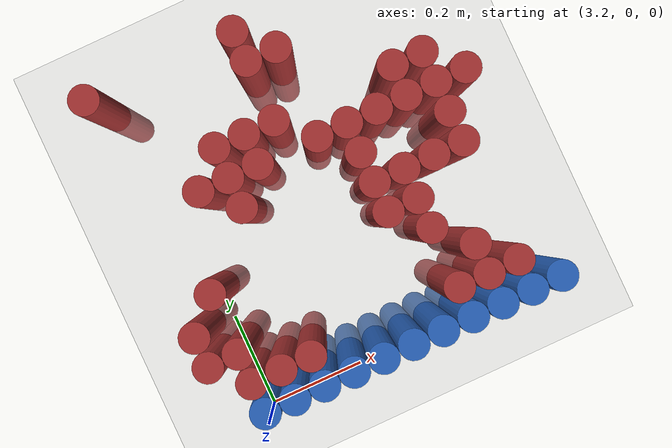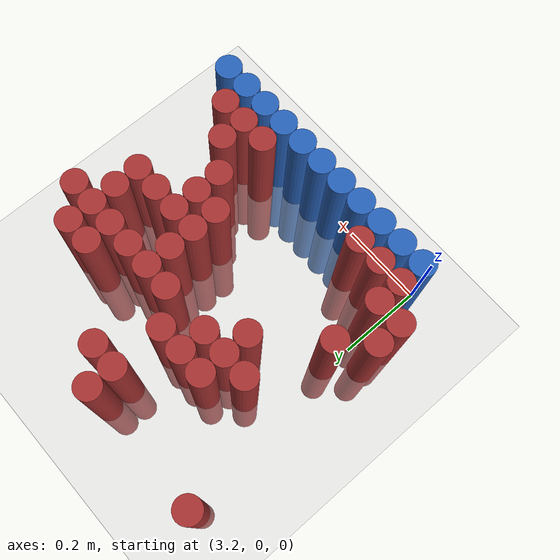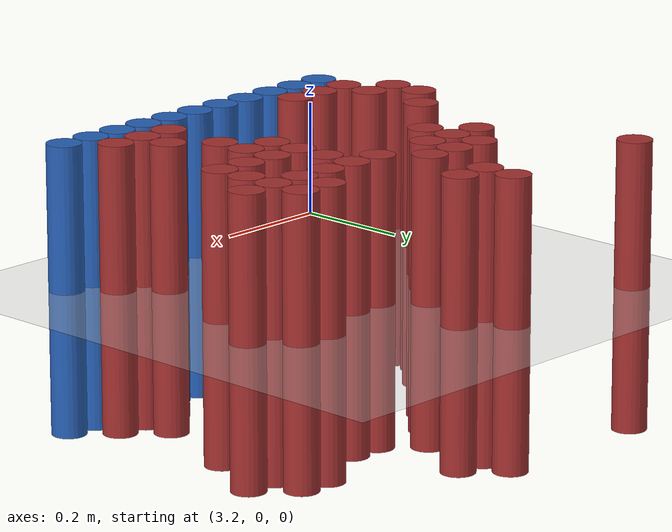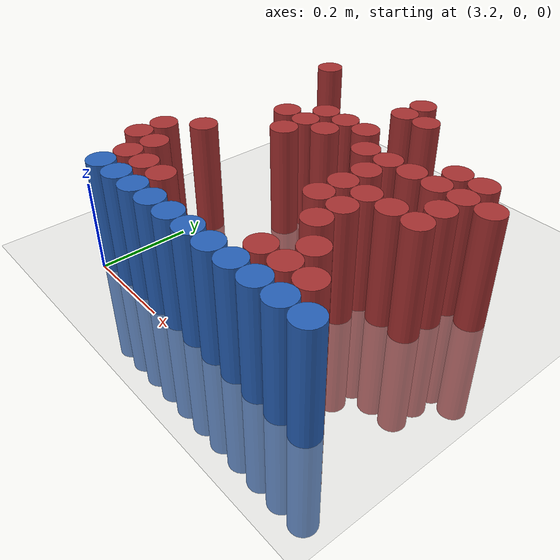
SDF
<sdf version="1.6">
 <world name="default">
  <model name="ground_plane">
   <static>1</static>
   <link name="link">
    <collision name="collision">
     <geometry><plane><normal>0 0 1</normal><size>100 100</size></plane></geometry>
     <surface><friction><ode><mu>100</mu><mu2>50</mu2></ode></friction></surface>
    </collision>
    <visual name="visual">
     <cast_shadows>0</cast_shadows>
     <geometry><plane><normal>0 0 1</normal><size>100 100</size></plane></geometry>
     <material>
      <script><uri>file://media/materials/scripts/gazebo.material</uri><name>Gazebo/Grey</name></script>
     </material>
    </visual>
   </link>
  </model>
  <model name="unit_cylinder_229">
   <static>1</static>
   <pose>3.150000 0.690000 0.000000 0.000000 0.000000 0.000000</pose>
   <link name="link">
    <inertial>
     <mass>1</mass>
     <inertia><ixx>0.145833</ixx><ixy>0</ixy><ixz>0</ixz><iyy>0.145833</iyy><iyz>0</iyz><izz>0.125</izz></inertia>
    </inertial>
    <collision name="collision">
     <geometry><cylinder><radius>0.030000</radius><length>0.5</length></cylinder></geometry>
    </collision>
    <visual name="visual">
     <geometry><cylinder><radius>0.030000</radius><length>0.5</length></cylinder></geometry>
     <material>
      <ambient>0.648000 0.192000 0.192000 1</ambient>
      <diffuse>0.648000 0.192000 0.192000 1</diffuse>
     </material>
     <material>
      <script><name>Gazebo/Grey</name><uri>file://media/materials/scripts/gazebo.material</uri></script>
     </material>
    </visual>
   </link>
  </model>
  <model name="unit_cylinder_230">
   <static>1</static>
   <pose>3.450000 0.690000 0.000000 0.000000 0.000000 0.000000</pose>
   <link name="link">
    <inertial>
     <mass>1</mass>
     <inertia><ixx>0.145833</ixx><ixy>0</ixy><ixz>0</ixz><iyy>0.145833</iyy><iyz>0</iyz><izz>0.125</izz></inertia>
    </inertial>
    <collision name="collision">
     <geometry><cylinder><radius>0.030000</radius><length>0.5</length></cylinder></geometry>
    </collision>
    <visual name="visual">
     <geometry><cylinder><radius>0.030000</radius><length>0.5</length></cylinder></geometry>
     <material>
      <ambient>0.648000 0.192000 0.192000 1</ambient>
      <diffuse>0.648000 0.192000 0.192000 1</diffuse>
     </material>
     <material>
      <script><name>Gazebo/Grey</name><uri>file://media/materials/scripts/gazebo.material</uri></script>
     </material>
    </visual>
   </link>
  </model>
  <model name="unit_cylinder_235">
   <static>1</static>
   <pose>3.450000 0.630000 0.000000 0.000000 0.000000 0.000000</pose>
   <link name="link">
    <inertial>
     <mass>1</mass>
     <inertia><ixx>0.145833</ixx><ixy>0</ixy><ixz>0</ixz><iyy>0.145833</iyy><iyz>0</iyz><izz>0.125</izz></inertia>
    </inertial>
    <collision name="collision">
     <geometry><cylinder><radius>0.030000</radius><length>0.5</length></cylinder></geometry>
    </collision>
    <visual name="visual">
     <geometry><cylinder><radius>0.030000</radius><length>0.5</length></cylinder></geometry>
     <material>
      <ambient>0.648000 0.192000 0.192000 1</ambient>
      <diffuse>0.648000 0.192000 0.192000 1</diffuse>
     </material>
     <material>
      <script><name>Gazebo/Grey</name><uri>file://media/materials/scripts/gazebo.material</uri></script>
     </material>
    </visual>
   </link>
  </model>
  <model name="unit_cylinder_236">
   <static>1</static>
   <pose>3.510000 0.630000 0.000000 0.000000 0.000000 0.000000</pose>
   <link name="link">
    <inertial>
     <mass>1</mass>
     <inertia><ixx>0.145833</ixx><ixy>0</ixy><ixz>0</ixz><iyy>0.145833</iyy><iyz>0</iyz><izz>0.125</izz></inertia>
    </inertial>
    <collision name="collision">
     <geometry><cylinder><radius>0.030000</radius><length>0.5</length></cylinder></geometry>
    </collision>
    <visual name="visual">
     <geometry><cylinder><radius>0.030000</radius><length>0.5</length></cylinder></geometry>
     <material>
      <ambient>0.648000 0.192000 0.192000 1</ambient>
      <diffuse>0.648000 0.192000 0.192000 1</diffuse>
     </material>
     <material>
      <script><name>Gazebo/Grey</name><uri>file://media/materials/scripts/gazebo.material</uri></script>
     </material>
    </visual>
   </link>
  </model>
  <model name="unit_cylinder_244">
   <static>1</static>
   <pose>3.330000 0.510000 0.000000 0.000000 0.000000 0.000000</pose>
   <link name="link">
    <inertial>
     <mass>1</mass>
     <inertia><ixx>0.145833</ixx><ixy>0</ixy><ixz>0</ixz><iyy>0.145833</iyy><iyz>0</iyz><izz>0.125</izz></inertia>
    </inertial>
    <collision name="collision">
     <geometry><cylinder><radius>0.030000</radius><length>0.5</length></cylinder></geometry>
    </collision>
    <visual name="visual">
     <geometry><cylinder><radius>0.030000</radius><length>0.5</length></cylinder></geometry>
     <material>
      <ambient>0.648000 0.192000 0.192000 1</ambient>
      <diffuse>0.648000 0.192000 0.192000 1</diffuse>
     </material>
     <material>
      <script><name>Gazebo/Grey</name><uri>file://media/materials/scripts/gazebo.material</uri></script>
     </material>
    </visual>
   </link>
  </model>
  <model name="unit_cylinder_245">
   <static>1</static>
   <pose>3.390000 0.510000 0.000000 0.000000 0.000000 0.000000</pose>
   <link name="link">
    <inertial>
     <mass>1</mass>
     <inertia><ixx>0.145833</ixx><ixy>0</ixy><ixz>0</ixz><iyy>0.145833</iyy><iyz>0</iyz><izz>0.125</izz></inertia>
    </inertial>
    <collision name="collision">
     <geometry><cylinder><radius>0.030000</radius><length>0.5</length></cylinder></geometry>
    </collision>
    <visual name="visual">
     <geometry><cylinder><radius>0.030000</radius><length>0.5</length></cylinder></geometry>
     <material>
      <ambient>0.648000 0.192000 0.192000 1</ambient>
      <diffuse>0.648000 0.192000 0.192000 1</diffuse>
     </material>
     <material>
      <script><name>Gazebo/Grey</name><uri>file://media/materials/scripts/gazebo.material</uri></script>
     </material>
    </visual>
   </link>
  </model>
  <model name="unit_cylinder_246">
   <static>1</static>
   <pose>3.450000 0.510000 0.000000 0.000000 0.000000 0.000000</pose>
   <link name="link">
    <inertial>
     <mass>1</mass>
     <inertia><ixx>0.145833</ixx><ixy>0</ixy><ixz>0</ixz><iyy>0.145833</iyy><iyz>0</iyz><izz>0.125</izz></inertia>
    </inertial>
    <collision name="collision">
     <geometry><cylinder><radius>0.030000</radius><length>0.5</length></cylinder></geometry>
    </collision>
    <visual name="visual">
     <geometry><cylinder><radius>0.030000</radius><length>0.5</length></cylinder></geometry>
     <material>
      <ambient>0.648000 0.192000 0.192000 1</ambient>
      <diffuse>0.648000 0.192000 0.192000 1</diffuse>
     </material>
     <material>
      <script><name>Gazebo/Grey</name><uri>file://media/materials/scripts/gazebo.material</uri></script>
     </material>
    </visual>
   </link>
  </model>
  <model name="unit_cylinder_247">
   <static>1</static>
   <pose>3.690000 0.510000 0.000000 0.000000 0.000000 0.000000</pose>
   <link name="link">
    <inertial>
     <mass>1</mass>
     <inertia><ixx>0.145833</ixx><ixy>0</ixy><ixz>0</ixz><iyy>0.145833</iyy><iyz>0</iyz><izz>0.125</izz></inertia>
    </inertial>
    <collision name="collision">
     <geometry><cylinder><radius>0.030000</radius><length>0.5</length></cylinder></geometry>
    </collision>
    <visual name="visual">
     <geometry><cylinder><radius>0.030000</radius><length>0.5</length></cylinder></geometry>
     <material>
      <ambient>0.648000 0.192000 0.192000 1</ambient>
      <diffuse>0.648000 0.192000 0.192000 1</diffuse>
     </material>
     <material>
      <script><name>Gazebo/Grey</name><uri>file://media/materials/scripts/gazebo.material</uri></script>
     </material>
    </visual>
   </link>
  </model>
  <model name="unit_cylinder_248">
   <static>1</static>
   <pose>3.750000 0.510000 0.000000 0.000000 0.000000 0.000000</pose>
   <link name="link">
    <inertial>
     <mass>1</mass>
     <inertia><ixx>0.145833</ixx><ixy>0</ixy><ixz>0</ixz><iyy>0.145833</iyy><iyz>0</iyz><izz>0.125</izz></inertia>
    </inertial>
    <collision name="collision">
     <geometry><cylinder><radius>0.030000</radius><length>0.5</length></cylinder></geometry>
    </collision>
    <visual name="visual">
     <geometry><cylinder><radius>0.030000</radius><length>0.5</length></cylinder></geometry>
     <material>
      <ambient>0.648000 0.192000 0.192000 1</ambient>
      <diffuse>0.648000 0.192000 0.192000 1</diffuse>
     </material>
     <material>
      <script><name>Gazebo/Grey</name><uri>file://media/materials/scripts/gazebo.material</uri></script>
     </material>
    </visual>
   </link>
  </model>
  <model name="unit_cylinder_250">
   <static>1</static>
   <pose>3.270000 0.450000 0.000000 0.000000 0.000000 0.000000</pose>
   <link name="link">
    <inertial>
     <mass>1</mass>
     <inertia><ixx>0.145833</ixx><ixy>0</ixy><ixz>0</ixz><iyy>0.145833</iyy><iyz>0</iyz><izz>0.125</izz></inertia>
    </inertial>
    <collision name="collision">
     <geometry><cylinder><radius>0.030000</radius><length>0.5</length></cylinder></geometry>
    </collision>
    <visual name="visual">
     <geometry><cylinder><radius>0.030000</radius><length>0.5</length></cylinder></geometry>
     <material>
      <ambient>0.648000 0.192000 0.192000 1</ambient>
      <diffuse>0.648000 0.192000 0.192000 1</diffuse>
     </material>
     <material>
      <script><name>Gazebo/Grey</name><uri>file://media/materials/scripts/gazebo.material</uri></script>
     </material>
    </visual>
   </link>
  </model>
  <model name="unit_cylinder_251">
   <static>1</static>
   <pose>3.330000 0.450000 0.000000 0.000000 0.000000 0.000000</pose>
   <link name="link">
    <inertial>
     <mass>1</mass>
     <inertia><ixx>0.145833</ixx><ixy>0</ixy><ixz>0</ixz><iyy>0.145833</iyy><iyz>0</iyz><izz>0.125</izz></inertia>
    </inertial>
    <collision name="collision">
     <geometry><cylinder><radius>0.030000</radius><length>0.5</length></cylinder></geometry>
    </collision>
    <visual name="visual">
     <geometry><cylinder><radius>0.030000</radius><length>0.5</length></cylinder></geometry>
     <material>
      <ambient>0.648000 0.192000 0.192000 1</ambient>
      <diffuse>0.648000 0.192000 0.192000 1</diffuse>
     </material>
     <material>
      <script><name>Gazebo/Grey</name><uri>file://media/materials/scripts/gazebo.material</uri></script>
     </material>
    </visual>
   </link>
  </model>
  <model name="unit_cylinder_252">
   <static>1</static>
   <pose>3.390000 0.450000 0.000000 0.000000 0.000000 0.000000</pose>
   <link name="link">
    <inertial>
     <mass>1</mass>
     <inertia><ixx>0.145833</ixx><ixy>0</ixy><ixz>0</ixz><iyy>0.145833</iyy><iyz>0</iyz><izz>0.125</izz></inertia>
    </inertial>
    <collision name="collision">
     <geometry><cylinder><radius>0.030000</radius><length>0.5</length></cylinder></geometry>
    </collision>
    <visual name="visual">
     <geometry><cylinder><radius>0.030000</radius><length>0.5</length></cylinder></geometry>
     <material>
      <ambient>0.648000 0.192000 0.192000 1</ambient>
      <diffuse>0.648000 0.192000 0.192000 1</diffuse>
     </material>
     <material>
      <script><name>Gazebo/Grey</name><uri>file://media/materials/scripts/gazebo.material</uri></script>
     </material>
    </visual>
   </link>
  </model>
  <model name="unit_cylinder_253">
   <static>1</static>
   <pose>3.510000 0.450000 0.000000 0.000000 0.000000 0.000000</pose>
   <link name="link">
    <inertial>
     <mass>1</mass>
     <inertia><ixx>0.145833</ixx><ixy>0</ixy><ixz>0</ixz><iyy>0.145833</iyy><iyz>0</iyz><izz>0.125</izz></inertia>
    </inertial>
    <collision name="collision">
     <geometry><cylinder><radius>0.030000</radius><length>0.5</length></cylinder></geometry>
    </collision>
    <visual name="visual">
     <geometry><cylinder><radius>0.030000</radius><length>0.5</length></cylinder></geometry>
     <material>
      <ambient>0.648000 0.192000 0.192000 1</ambient>
      <diffuse>0.648000 0.192000 0.192000 1</diffuse>
     </material>
     <material>
      <script><name>Gazebo/Grey</name><uri>file://media/materials/scripts/gazebo.material</uri></script>
     </material>
    </visual>
   </link>
  </model>
  <model name="unit_cylinder_254">
   <static>1</static>
   <pose>3.570000 0.450000 0.000000 0.000000 0.000000 0.000000</pose>
   <link name="link">
    <inertial>
     <mass>1</mass>
     <inertia><ixx>0.145833</ixx><ixy>0</ixy><ixz>0</ixz><iyy>0.145833</iyy><iyz>0</iyz><izz>0.125</izz></inertia>
    </inertial>
    <collision name="collision">
     <geometry><cylinder><radius>0.030000</radius><length>0.5</length></cylinder></geometry>
    </collision>
    <visual name="visual">
     <geometry><cylinder><radius>0.030000</radius><length>0.5</length></cylinder></geometry>
     <material>
      <ambient>0.648000 0.192000 0.192000 1</ambient>
      <diffuse>0.648000 0.192000 0.192000 1</diffuse>
     </material>
     <material>
      <script><name>Gazebo/Grey</name><uri>file://media/materials/scripts/gazebo.material</uri></script>
     </material>
    </visual>
   </link>
  </model>
  <model name="unit_cylinder_255">
   <static>1</static>
   <pose>3.630000 0.450000 0.000000 0.000000 0.000000 0.000000</pose>
   <link name="link">
    <inertial>
     <mass>1</mass>
     <inertia><ixx>0.145833</ixx><ixy>0</ixy><ixz>0</ixz><iyy>0.145833</iyy><iyz>0</iyz><izz>0.125</izz></inertia>
    </inertial>
    <collision name="collision">
     <geometry><cylinder><radius>0.030000</radius><length>0.5</length></cylinder></geometry>
    </collision>
    <visual name="visual">
     <geometry><cylinder><radius>0.030000</radius><length>0.5</length></cylinder></geometry>
     <material>
      <ambient>0.648000 0.192000 0.192000 1</ambient>
      <diffuse>0.648000 0.192000 0.192000 1</diffuse>
     </material>
     <material>
      <script><name>Gazebo/Grey</name><uri>file://media/materials/scripts/gazebo.material</uri></script>
     </material>
    </visual>
   </link>
  </model>
  <model name="unit_cylinder_256">
   <static>1</static>
   <pose>3.690000 0.450000 0.000000 0.000000 0.000000 0.000000</pose>
   <link name="link">
    <inertial>
     <mass>1</mass>
     <inertia><ixx>0.145833</ixx><ixy>0</ixy><ixz>0</ixz><iyy>0.145833</iyy><iyz>0</iyz><izz>0.125</izz></inertia>
    </inertial>
    <collision name="collision">
     <geometry><cylinder><radius>0.030000</radius><length>0.5</length></cylinder></geometry>
    </collision>
    <visual name="visual">
     <geometry><cylinder><radius>0.030000</radius><length>0.5</length></cylinder></geometry>
     <material>
      <ambient>0.648000 0.192000 0.192000 1</ambient>
      <diffuse>0.648000 0.192000 0.192000 1</diffuse>
     </material>
     <material>
      <script><name>Gazebo/Grey</name><uri>file://media/materials/scripts/gazebo.material</uri></script>
     </material>
    </visual>
   </link>
  </model>
  <model name="unit_cylinder_257">
   <static>1</static>
   <pose>3.750000 0.450000 0.000000 0.000000 0.000000 0.000000</pose>
   <link name="link">
    <inertial>
     <mass>1</mass>
     <inertia><ixx>0.145833</ixx><ixy>0</ixy><ixz>0</ixz><iyy>0.145833</iyy><iyz>0</iyz><izz>0.125</izz></inertia>
    </inertial>
    <collision name="collision">
     <geometry><cylinder><radius>0.030000</radius><length>0.5</length></cylinder></geometry>
    </collision>
    <visual name="visual">
     <geometry><cylinder><radius>0.030000</radius><length>0.5</length></cylinder></geometry>
     <material>
      <ambient>0.648000 0.192000 0.192000 1</ambient>
      <diffuse>0.648000 0.192000 0.192000 1</diffuse>
     </material>
     <material>
      <script><name>Gazebo/Grey</name><uri>file://media/materials/scripts/gazebo.material</uri></script>
     </material>
    </visual>
   </link>
  </model>
  <model name="unit_cylinder_258">
   <static>1</static>
   <pose>3.810000 0.450000 0.000000 0.000000 0.000000 0.000000</pose>
   <link name="link">
    <inertial>
     <mass>1</mass>
     <inertia><ixx>0.145833</ixx><ixy>0</ixy><ixz>0</ixz><iyy>0.145833</iyy><iyz>0</iyz><izz>0.125</izz></inertia>
    </inertial>
    <collision name="collision">
     <geometry><cylinder><radius>0.030000</radius><length>0.5</length></cylinder></geometry>
    </collision>
    <visual name="visual">
     <geometry><cylinder><radius>0.030000</radius><length>0.5</length></cylinder></geometry>
     <material>
      <ambient>0.648000 0.192000 0.192000 1</ambient>
      <diffuse>0.648000 0.192000 0.192000 1</diffuse>
     </material>
     <material>
      <script><name>Gazebo/Grey</name><uri>file://media/materials/scripts/gazebo.material</uri></script>
     </material>
    </visual>
   </link>
  </model>
  <model name="unit_cylinder_261">
   <static>1</static>
   <pose>3.330000 0.390000 0.000000 0.000000 0.000000 0.000000</pose>
   <link name="link">
    <inertial>
     <mass>1</mass>
     <inertia><ixx>0.145833</ixx><ixy>0</ixy><ixz>0</ixz><iyy>0.145833</iyy><iyz>0</iyz><izz>0.125</izz></inertia>
    </inertial>
    <collision name="collision">
     <geometry><cylinder><radius>0.030000</radius><length>0.5</length></cylinder></geometry>
    </collision>
    <visual name="visual">
     <geometry><cylinder><radius>0.030000</radius><length>0.5</length></cylinder></geometry>
     <material>
      <ambient>0.648000 0.192000 0.192000 1</ambient>
      <diffuse>0.648000 0.192000 0.192000 1</diffuse>
     </material>
     <material>
      <script><name>Gazebo/Grey</name><uri>file://media/materials/scripts/gazebo.material</uri></script>
     </material>
    </visual>
   </link>
  </model>
  <model name="unit_cylinder_262">
   <static>1</static>
   <pose>3.570000 0.390000 0.000000 0.000000 0.000000 0.000000</pose>
   <link name="link">
    <inertial>
     <mass>1</mass>
     <inertia><ixx>0.145833</ixx><ixy>0</ixy><ixz>0</ixz><iyy>0.145833</iyy><iyz>0</iyz><izz>0.125</izz></inertia>
    </inertial>
    <collision name="collision">
     <geometry><cylinder><radius>0.030000</radius><length>0.5</length></cylinder></geometry>
    </collision>
    <visual name="visual">
     <geometry><cylinder><radius>0.030000</radius><length>0.5</length></cylinder></geometry>
     <material>
      <ambient>0.648000 0.192000 0.192000 1</ambient>
      <diffuse>0.648000 0.192000 0.192000 1</diffuse>
     </material>
     <material>
      <script><name>Gazebo/Grey</name><uri>file://media/materials/scripts/gazebo.material</uri></script>
     </material>
    </visual>
   </link>
  </model>
  <model name="unit_cylinder_263">
   <static>1</static>
   <pose>3.750000 0.390000 0.000000 0.000000 0.000000 0.000000</pose>
   <link name="link">
    <inertial>
     <mass>1</mass>
     <inertia><ixx>0.145833</ixx><ixy>0</ixy><ixz>0</ixz><iyy>0.145833</iyy><iyz>0</iyz><izz>0.125</izz></inertia>
    </inertial>
    <collision name="collision">
     <geometry><cylinder><radius>0.030000</radius><length>0.5</length></cylinder></geometry>
    </collision>
    <visual name="visual">
     <geometry><cylinder><radius>0.030000</radius><length>0.5</length></cylinder></geometry>
     <material>
      <ambient>0.648000 0.192000 0.192000 1</ambient>
      <diffuse>0.648000 0.192000 0.192000 1</diffuse>
     </material>
     <material>
      <script><name>Gazebo/Grey</name><uri>file://media/materials/scripts/gazebo.material</uri></script>
     </material>
    </visual>
   </link>
  </model>
  <model name="unit_cylinder_268">
   <static>1</static>
   <pose>3.570000 0.330000 0.000000 0.000000 0.000000 0.000000</pose>
   <link name="link">
    <inertial>
     <mass>1</mass>
     <inertia><ixx>0.145833</ixx><ixy>0</ixy><ixz>0</ixz><iyy>0.145833</iyy><iyz>0</iyz><izz>0.125</izz></inertia>
    </inertial>
    <collision name="collision">
     <geometry><cylinder><radius>0.030000</radius><length>0.5</length></cylinder></geometry>
    </collision>
    <visual name="visual">
     <geometry><cylinder><radius>0.030000</radius><length>0.5</length></cylinder></geometry>
     <material>
      <ambient>0.648000 0.192000 0.192000 1</ambient>
      <diffuse>0.648000 0.192000 0.192000 1</diffuse>
     </material>
     <material>
      <script><name>Gazebo/Grey</name><uri>file://media/materials/scripts/gazebo.material</uri></script>
     </material>
    </visual>
   </link>
  </model>
  <model name="unit_cylinder_269">
   <static>1</static>
   <pose>3.630000 0.330000 0.000000 0.000000 0.000000 0.000000</pose>
   <link name="link">
    <inertial>
     <mass>1</mass>
     <inertia><ixx>0.145833</ixx><ixy>0</ixy><ixz>0</ixz><iyy>0.145833</iyy><iyz>0</iyz><izz>0.125</izz></inertia>
    </inertial>
    <collision name="collision">
     <geometry><cylinder><radius>0.030000</radius><length>0.5</length></cylinder></geometry>
    </collision>
    <visual name="visual">
     <geometry><cylinder><radius>0.030000</radius><length>0.5</length></cylinder></geometry>
     <material>
      <ambient>0.648000 0.192000 0.192000 1</ambient>
      <diffuse>0.648000 0.192000 0.192000 1</diffuse>
     </material>
     <material>
      <script><name>Gazebo/Grey</name><uri>file://media/materials/scripts/gazebo.material</uri></script>
     </material>
    </visual>
   </link>
  </model>
  <model name="unit_cylinder_270">
   <static>1</static>
   <pose>3.690000 0.330000 0.000000 0.000000 0.000000 0.000000</pose>
   <link name="link">
    <inertial>
     <mass>1</mass>
     <inertia><ixx>0.145833</ixx><ixy>0</ixy><ixz>0</ixz><iyy>0.145833</iyy><iyz>0</iyz><izz>0.125</izz></inertia>
    </inertial>
    <collision name="collision">
     <geometry><cylinder><radius>0.030000</radius><length>0.5</length></cylinder></geometry>
    </collision>
    <visual name="visual">
     <geometry><cylinder><radius>0.030000</radius><length>0.5</length></cylinder></geometry>
     <material>
      <ambient>0.648000 0.192000 0.192000 1</ambient>
      <diffuse>0.648000 0.192000 0.192000 1</diffuse>
     </material>
     <material>
      <script><name>Gazebo/Grey</name><uri>file://media/materials/scripts/gazebo.material</uri></script>
     </material>
    </visual>
   </link>
  </model>
  <model name="unit_cylinder_271">
   <static>1</static>
   <pose>3.750000 0.330000 0.000000 0.000000 0.000000 0.000000</pose>
   <link name="link">
    <inertial>
     <mass>1</mass>
     <inertia><ixx>0.145833</ixx><ixy>0</ixy><ixz>0</ixz><iyy>0.145833</iyy><iyz>0</iyz><izz>0.125</izz></inertia>
    </inertial>
    <collision name="collision">
     <geometry><cylinder><radius>0.030000</radius><length>0.5</length></cylinder></geometry>
    </collision>
    <visual name="visual">
     <geometry><cylinder><radius>0.030000</radius><length>0.5</length></cylinder></geometry>
     <material>
      <ambient>0.648000 0.192000 0.192000 1</ambient>
      <diffuse>0.648000 0.192000 0.192000 1</diffuse>
     </material>
     <material>
      <script><name>Gazebo/Grey</name><uri>file://media/materials/scripts/gazebo.material</uri></script>
     </material>
    </visual>
   </link>
  </model>
  <model name="unit_cylinder_276">
   <static>1</static>
   <pose>3.210000 0.270000 0.000000 0.000000 0.000000 0.000000</pose>
   <link name="link">
    <inertial>
     <mass>1</mass>
     <inertia><ixx>0.145833</ixx><ixy>0</ixy><ixz>0</ixz><iyy>0.145833</iyy><iyz>0</iyz><izz>0.125</izz></inertia>
    </inertial>
    <collision name="collision">
     <geometry><cylinder><radius>0.030000</radius><length>0.5</length></cylinder></geometry>
    </collision>
    <visual name="visual">
     <geometry><cylinder><radius>0.030000</radius><length>0.5</length></cylinder></geometry>
     <material>
      <ambient>0.648000 0.192000 0.192000 1</ambient>
      <diffuse>0.648000 0.192000 0.192000 1</diffuse>
     </material>
     <material>
      <script><name>Gazebo/Grey</name><uri>file://media/materials/scripts/gazebo.material</uri></script>
     </material>
    </visual>
   </link>
  </model>
  <model name="unit_cylinder_277">
   <static>1</static>
   <pose>3.570000 0.270000 0.000000 0.000000 0.000000 0.000000</pose>
   <link name="link">
    <inertial>
     <mass>1</mass>
     <inertia><ixx>0.145833</ixx><ixy>0</ixy><ixz>0</ixz><iyy>0.145833</iyy><iyz>0</iyz><izz>0.125</izz></inertia>
    </inertial>
    <collision name="collision">
     <geometry><cylinder><radius>0.030000</radius><length>0.5</length></cylinder></geometry>
    </collision>
    <visual name="visual">
     <geometry><cylinder><radius>0.030000</radius><length>0.5</length></cylinder></geometry>
     <material>
      <ambient>0.648000 0.192000 0.192000 1</ambient>
      <diffuse>0.648000 0.192000 0.192000 1</diffuse>
     </material>
     <material>
      <script><name>Gazebo/Grey</name><uri>file://media/materials/scripts/gazebo.material</uri></script>
     </material>
    </visual>
   </link>
  </model>
  <model name="unit_cylinder_278">
   <static>1</static>
   <pose>3.630000 0.270000 0.000000 0.000000 0.000000 0.000000</pose>
   <link name="link">
    <inertial>
     <mass>1</mass>
     <inertia><ixx>0.145833</ixx><ixy>0</ixy><ixz>0</ixz><iyy>0.145833</iyy><iyz>0</iyz><izz>0.125</izz></inertia>
    </inertial>
    <collision name="collision">
     <geometry><cylinder><radius>0.030000</radius><length>0.5</length></cylinder></geometry>
    </collision>
    <visual name="visual">
     <geometry><cylinder><radius>0.030000</radius><length>0.5</length></cylinder></geometry>
     <material>
      <ambient>0.648000 0.192000 0.192000 1</ambient>
      <diffuse>0.648000 0.192000 0.192000 1</diffuse>
     </material>
     <material>
      <script><name>Gazebo/Grey</name><uri>file://media/materials/scripts/gazebo.material</uri></script>
     </material>
    </visual>
   </link>
  </model>
  <model name="unit_cylinder_288">
   <static>1</static>
   <pose>3.150000 0.210000 0.000000 0.000000 0.000000 0.000000</pose>
   <link name="link">
    <inertial>
     <mass>1</mass>
     <inertia><ixx>0.145833</ixx><ixy>0</ixy><ixz>0</ixz><iyy>0.145833</iyy><iyz>0</iyz><izz>0.125</izz></inertia>
    </inertial>
    <collision name="collision">
     <geometry><cylinder><radius>0.030000</radius><length>0.5</length></cylinder></geometry>
    </collision>
    <visual name="visual">
     <geometry><cylinder><radius>0.030000</radius><length>0.5</length></cylinder></geometry>
     <material>
      <ambient>0.648000 0.192000 0.192000 1</ambient>
      <diffuse>0.648000 0.192000 0.192000 1</diffuse>
     </material>
     <material>
      <script><name>Gazebo/Grey</name><uri>file://media/materials/scripts/gazebo.material</uri></script>
     </material>
    </visual>
   </link>
  </model>
  <model name="unit_cylinder_289">
   <static>1</static>
   <pose>3.630000 0.210000 0.000000 0.000000 0.000000 0.000000</pose>
   <link name="link">
    <inertial>
     <mass>1</mass>
     <inertia><ixx>0.145833</ixx><ixy>0</ixy><ixz>0</ixz><iyy>0.145833</iyy><iyz>0</iyz><izz>0.125</izz></inertia>
    </inertial>
    <collision name="collision">
     <geometry><cylinder><radius>0.030000</radius><length>0.5</length></cylinder></geometry>
    </collision>
    <visual name="visual">
     <geometry><cylinder><radius>0.030000</radius><length>0.5</length></cylinder></geometry>
     <material>
      <ambient>0.648000 0.192000 0.192000 1</ambient>
      <diffuse>0.648000 0.192000 0.192000 1</diffuse>
     </material>
     <material>
      <script><name>Gazebo/Grey</name><uri>file://media/materials/scripts/gazebo.material</uri></script>
     </material>
    </visual>
   </link>
  </model>
  <model name="unit_cylinder_298">
   <static>1</static>
   <pose>3.150000 0.150000 0.000000 0.000000 0.000000 0.000000</pose>
   <link name="link">
    <inertial>
     <mass>1</mass>
     <inertia><ixx>0.145833</ixx><ixy>0</ixy><ixz>0</ixz><iyy>0.145833</iyy><iyz>0</iyz><izz>0.125</izz></inertia>
    </inertial>
    <collision name="collision">
     <geometry><cylinder><radius>0.030000</radius><length>0.5</length></cylinder></geometry>
    </collision>
    <visual name="visual">
     <geometry><cylinder><radius>0.030000</radius><length>0.5</length></cylinder></geometry>
     <material>
      <ambient>0.648000 0.192000 0.192000 1</ambient>
      <diffuse>0.648000 0.192000 0.192000 1</diffuse>
     </material>
     <material>
      <script><name>Gazebo/Grey</name><uri>file://media/materials/scripts/gazebo.material</uri></script>
     </material>
    </visual>
   </link>
  </model>
  <model name="unit_cylinder_299">
   <static>1</static>
   <pose>3.210000 0.150000 0.000000 0.000000 0.000000 0.000000</pose>
   <link name="link">
    <inertial>
     <mass>1</mass>
     <inertia><ixx>0.145833</ixx><ixy>0</ixy><ixz>0</ixz><iyy>0.145833</iyy><iyz>0</iyz><izz>0.125</izz></inertia>
    </inertial>
    <collision name="collision">
     <geometry><cylinder><radius>0.030000</radius><length>0.5</length></cylinder></geometry>
    </collision>
    <visual name="visual">
     <geometry><cylinder><radius>0.030000</radius><length>0.5</length></cylinder></geometry>
     <material>
      <ambient>0.648000 0.192000 0.192000 1</ambient>
      <diffuse>0.648000 0.192000 0.192000 1</diffuse>
     </material>
     <material>
      <script><name>Gazebo/Grey</name><uri>file://media/materials/scripts/gazebo.material</uri></script>
     </material>
    </visual>
   </link>
  </model>
  <model name="unit_cylinder_300">
   <static>1</static>
   <pose>3.690000 0.150000 0.000000 0.000000 0.000000 0.000000</pose>
   <link name="link">
    <inertial>
     <mass>1</mass>
     <inertia><ixx>0.145833</ixx><ixy>0</ixy><ixz>0</ixz><iyy>0.145833</iyy><iyz>0</iyz><izz>0.125</izz></inertia>
    </inertial>
    <collision name="collision">
     <geometry><cylinder><radius>0.030000</radius><length>0.5</length></cylinder></geometry>
    </collision>
    <visual name="visual">
     <geometry><cylinder><radius>0.030000</radius><length>0.5</length></cylinder></geometry>
     <material>
      <ambient>0.648000 0.192000 0.192000 1</ambient>
      <diffuse>0.648000 0.192000 0.192000 1</diffuse>
     </material>
     <material>
      <script><name>Gazebo/Grey</name><uri>file://media/materials/scripts/gazebo.material</uri></script>
     </material>
    </visual>
   </link>
  </model>
  <model name="unit_cylinder_315">
   <static>1</static>
   <pose>3.210000 0.090000 0.000000 0.000000 0.000000 0.000000</pose>
   <link name="link">
    <inertial>
     <mass>1</mass>
     <inertia><ixx>0.145833</ixx><ixy>0</ixy><ixz>0</ixz><iyy>0.145833</iyy><iyz>0</iyz><izz>0.125</izz></inertia>
    </inertial>
    <collision name="collision">
     <geometry><cylinder><radius>0.030000</radius><length>0.5</length></cylinder></geometry>
    </collision>
    <visual name="visual">
     <geometry><cylinder><radius>0.030000</radius><length>0.5</length></cylinder></geometry>
     <material>
      <ambient>0.648000 0.192000 0.192000 1</ambient>
      <diffuse>0.648000 0.192000 0.192000 1</diffuse>
     </material>
     <material>
      <script><name>Gazebo/Grey</name><uri>file://media/materials/scripts/gazebo.material</uri></script>
     </material>
    </visual>
   </link>
  </model>
  <model name="unit_cylinder_316">
   <static>1</static>
   <pose>3.270000 0.090000 0.000000 0.000000 0.000000 0.000000</pose>
   <link name="link">
    <inertial>
     <mass>1</mass>
     <inertia><ixx>0.145833</ixx><ixy>0</ixy><ixz>0</ixz><iyy>0.145833</iyy><iyz>0</iyz><izz>0.125</izz></inertia>
    </inertial>
    <collision name="collision">
     <geometry><cylinder><radius>0.030000</radius><length>0.5</length></cylinder></geometry>
    </collision>
    <visual name="visual">
     <geometry><cylinder><radius>0.030000</radius><length>0.5</length></cylinder></geometry>
     <material>
      <ambient>0.648000 0.192000 0.192000 1</ambient>
      <diffuse>0.648000 0.192000 0.192000 1</diffuse>
     </material>
     <material>
      <script><name>Gazebo/Grey</name><uri>file://media/materials/scripts/gazebo.material</uri></script>
     </material>
    </visual>
   </link>
  </model>
  <model name="unit_cylinder_317">
   <static>1</static>
   <pose>3.330000 0.090000 0.000000 0.000000 0.000000 0.000000</pose>
   <link name="link">
    <inertial>
     <mass>1</mass>
     <inertia><ixx>0.145833</ixx><ixy>0</ixy><ixz>0</ixz><iyy>0.145833</iyy><iyz>0</iyz><izz>0.125</izz></inertia>
    </inertial>
    <collision name="collision">
     <geometry><cylinder><radius>0.030000</radius><length>0.5</length></cylinder></geometry>
    </collision>
    <visual name="visual">
     <geometry><cylinder><radius>0.030000</radius><length>0.5</length></cylinder></geometry>
     <material>
      <ambient>0.648000 0.192000 0.192000 1</ambient>
      <diffuse>0.648000 0.192000 0.192000 1</diffuse>
     </material>
     <material>
      <script><name>Gazebo/Grey</name><uri>file://media/materials/scripts/gazebo.material</uri></script>
     </material>
    </visual>
   </link>
  </model>
  <model name="unit_cylinder_318">
   <static>1</static>
   <pose>3.630000 0.090000 0.000000 0.000000 0.000000 0.000000</pose>
   <link name="link">
    <inertial>
     <mass>1</mass>
     <inertia><ixx>0.145833</ixx><ixy>0</ixy><ixz>0</ixz><iyy>0.145833</iyy><iyz>0</iyz><izz>0.125</izz></inertia>
    </inertial>
    <collision name="collision">
     <geometry><cylinder><radius>0.030000</radius><length>0.5</length></cylinder></geometry>
    </collision>
    <visual name="visual">
     <geometry><cylinder><radius>0.030000</radius><length>0.5</length></cylinder></geometry>
     <material>
      <ambient>0.648000 0.192000 0.192000 1</ambient>
      <diffuse>0.648000 0.192000 0.192000 1</diffuse>
     </material>
     <material>
      <script><name>Gazebo/Grey</name><uri>file://media/materials/scripts/gazebo.material</uri></script>
     </material>
    </visual>
   </link>
  </model>
  <model name="unit_cylinder_319">
   <static>1</static>
   <pose>3.690000 0.090000 0.000000 0.000000 0.000000 0.000000</pose>
   <link name="link">
    <inertial>
     <mass>1</mass>
     <inertia><ixx>0.145833</ixx><ixy>0</ixy><ixz>0</ixz><iyy>0.145833</iyy><iyz>0</iyz><izz>0.125</izz></inertia>
    </inertial>
    <collision name="collision">
     <geometry><cylinder><radius>0.030000</radius><length>0.5</length></cylinder></geometry>
    </collision>
    <visual name="visual">
     <geometry><cylinder><radius>0.030000</radius><length>0.5</length></cylinder></geometry>
     <material>
      <ambient>0.648000 0.192000 0.192000 1</ambient>
      <diffuse>0.648000 0.192000 0.192000 1</diffuse>
     </material>
     <material>
      <script><name>Gazebo/Grey</name><uri>file://media/materials/scripts/gazebo.material</uri></script>
     </material>
    </visual>
   </link>
  </model>
  <model name="unit_cylinder_320">
   <static>1</static>
   <pose>3.750000 0.090000 0.000000 0.000000 0.000000 0.000000</pose>
   <link name="link">
    <inertial>
     <mass>1</mass>
     <inertia><ixx>0.145833</ixx><ixy>0</ixy><ixz>0</ixz><iyy>0.145833</iyy><iyz>0</iyz><izz>0.125</izz></inertia>
    </inertial>
    <collision name="collision">
     <geometry><cylinder><radius>0.030000</radius><length>0.5</length></cylinder></geometry>
    </collision>
    <visual name="visual">
     <geometry><cylinder><radius>0.030000</radius><length>0.5</length></cylinder></geometry>
     <material>
      <ambient>0.648000 0.192000 0.192000 1</ambient>
      <diffuse>0.648000 0.192000 0.192000 1</diffuse>
     </material>
     <material>
      <script><name>Gazebo/Grey</name><uri>file://media/materials/scripts/gazebo.material</uri></script>
     </material>
    </visual>
   </link>
  </model>
  <model name="unit_cylinder_340">
   <static>1</static>
   <pose>3.210000 0.030000 0.000000 0.000000 0.000000 0.000000</pose>
   <link name="link">
    <inertial>
     <mass>1</mass>
     <inertia><ixx>0.145833</ixx><ixy>0</ixy><ixz>0</ixz><iyy>0.145833</iyy><iyz>0</iyz><izz>0.125</izz></inertia>
    </inertial>
    <collision name="collision">
     <geometry><cylinder><radius>0.030000</radius><length>0.5</length></cylinder></geometry>
    </collision>
    <visual name="visual">
     <geometry><cylinder><radius>0.030000</radius><length>0.5</length></cylinder></geometry>
     <material>
      <ambient>0.152000 0.379000 0.720000 1</ambient>
      <diffuse>0.152000 0.379000 0.720000 1</diffuse>
     </material>
     <material>
      <script><name>Gazebo/Grey</name><uri>file://media/materials/scripts/gazebo.material</uri></script>
     </material>
    </visual>
   </link>
  </model>
  <model name="unit_cylinder_341">
   <static>1</static>
   <pose>3.270000 0.030000 0.000000 0.000000 0.000000 0.000000</pose>
   <link name="link">
    <inertial>
     <mass>1</mass>
     <inertia><ixx>0.145833</ixx><ixy>0</ixy><ixz>0</ixz><iyy>0.145833</iyy><iyz>0</iyz><izz>0.125</izz></inertia>
    </inertial>
    <collision name="collision">
     <geometry><cylinder><radius>0.030000</radius><length>0.5</length></cylinder></geometry>
    </collision>
    <visual name="visual">
     <geometry><cylinder><radius>0.030000</radius><length>0.5</length></cylinder></geometry>
     <material>
      <ambient>0.152000 0.379000 0.720000 1</ambient>
      <diffuse>0.152000 0.379000 0.720000 1</diffuse>
     </material>
     <material>
      <script><name>Gazebo/Grey</name><uri>file://media/materials/scripts/gazebo.material</uri></script>
     </material>
    </visual>
   </link>
  </model>
  <model name="unit_cylinder_342">
   <static>1</static>
   <pose>3.330000 0.030000 0.000000 0.000000 0.000000 0.000000</pose>
   <link name="link">
    <inertial>
     <mass>1</mass>
     <inertia><ixx>0.145833</ixx><ixy>0</ixy><ixz>0</ixz><iyy>0.145833</iyy><iyz>0</iyz><izz>0.125</izz></inertia>
    </inertial>
    <collision name="collision">
     <geometry><cylinder><radius>0.030000</radius><length>0.5</length></cylinder></geometry>
    </collision>
    <visual name="visual">
     <geometry><cylinder><radius>0.030000</radius><length>0.5</length></cylinder></geometry>
     <material>
      <ambient>0.152000 0.379000 0.720000 1</ambient>
      <diffuse>0.152000 0.379000 0.720000 1</diffuse>
     </material>
     <material>
      <script><name>Gazebo/Grey</name><uri>file://media/materials/scripts/gazebo.material</uri></script>
     </material>
    </visual>
   </link>
  </model>
  <model name="unit_cylinder_343">
   <static>1</static>
   <pose>3.390000 0.030000 0.000000 0.000000 0.000000 0.000000</pose>
   <link name="link">
    <inertial>
     <mass>1</mass>
     <inertia><ixx>0.145833</ixx><ixy>0</ixy><ixz>0</ixz><iyy>0.145833</iyy><iyz>0</iyz><izz>0.125</izz></inertia>
    </inertial>
    <collision name="collision">
     <geometry><cylinder><radius>0.030000</radius><length>0.5</length></cylinder></geometry>
    </collision>
    <visual name="visual">
     <geometry><cylinder><radius>0.030000</radius><length>0.5</length></cylinder></geometry>
     <material>
      <ambient>0.152000 0.379000 0.720000 1</ambient>
      <diffuse>0.152000 0.379000 0.720000 1</diffuse>
     </material>
     <material>
      <script><name>Gazebo/Grey</name><uri>file://media/materials/scripts/gazebo.material</uri></script>
     </material>
    </visual>
   </link>
  </model>
  <model name="unit_cylinder_344">
   <static>1</static>
   <pose>3.450000 0.030000 0.000000 0.000000 0.000000 0.000000</pose>
   <link name="link">
    <inertial>
     <mass>1</mass>
     <inertia><ixx>0.145833</ixx><ixy>0</ixy><ixz>0</ixz><iyy>0.145833</iyy><iyz>0</iyz><izz>0.125</izz></inertia>
    </inertial>
    <collision name="collision">
     <geometry><cylinder><radius>0.030000</radius><length>0.5</length></cylinder></geometry>
    </collision>
    <visual name="visual">
     <geometry><cylinder><radius>0.030000</radius><length>0.5</length></cylinder></geometry>
     <material>
      <ambient>0.152000 0.379000 0.720000 1</ambient>
      <diffuse>0.152000 0.379000 0.720000 1</diffuse>
     </material>
     <material>
      <script><name>Gazebo/Grey</name><uri>file://media/materials/scripts/gazebo.material</uri></script>
     </material>
    </visual>
   </link>
  </model>
  <model name="unit_cylinder_345">
   <static>1</static>
   <pose>3.510000 0.030000 0.000000 0.000000 0.000000 0.000000</pose>
   <link name="link">
    <inertial>
     <mass>1</mass>
     <inertia><ixx>0.145833</ixx><ixy>0</ixy><ixz>0</ixz><iyy>0.145833</iyy><iyz>0</iyz><izz>0.125</izz></inertia>
    </inertial>
    <collision name="collision">
     <geometry><cylinder><radius>0.030000</radius><length>0.5</length></cylinder></geometry>
    </collision>
    <visual name="visual">
     <geometry><cylinder><radius>0.030000</radius><length>0.5</length></cylinder></geometry>
     <material>
      <ambient>0.152000 0.379000 0.720000 1</ambient>
      <diffuse>0.152000 0.379000 0.720000 1</diffuse>
     </material>
     <material>
      <script><name>Gazebo/Grey</name><uri>file://media/materials/scripts/gazebo.material</uri></script>
     </material>
    </visual>
   </link>
  </model>
  <model name="unit_cylinder_346">
   <static>1</static>
   <pose>3.570000 0.030000 0.000000 0.000000 0.000000 0.000000</pose>
   <link name="link">
    <inertial>
     <mass>1</mass>
     <inertia><ixx>0.145833</ixx><ixy>0</ixy><ixz>0</ixz><iyy>0.145833</iyy><iyz>0</iyz><izz>0.125</izz></inertia>
    </inertial>
    <collision name="collision">
     <geometry><cylinder><radius>0.030000</radius><length>0.5</length></cylinder></geometry>
    </collision>
    <visual name="visual">
     <geometry><cylinder><radius>0.030000</radius><length>0.5</length></cylinder></geometry>
     <material>
      <ambient>0.152000 0.379000 0.720000 1</ambient>
      <diffuse>0.152000 0.379000 0.720000 1</diffuse>
     </material>
     <material>
      <script><name>Gazebo/Grey</name><uri>file://media/materials/scripts/gazebo.material</uri></script>
     </material>
    </visual>
   </link>
  </model>
  <model name="unit_cylinder_347">
   <static>1</static>
   <pose>3.630000 0.030000 0.000000 0.000000 0.000000 0.000000</pose>
   <link name="link">
    <inertial>
     <mass>1</mass>
     <inertia><ixx>0.145833</ixx><ixy>0</ixy><ixz>0</ixz><iyy>0.145833</iyy><iyz>0</iyz><izz>0.125</izz></inertia>
    </inertial>
    <collision name="collision">
     <geometry><cylinder><radius>0.030000</radius><length>0.5</length></cylinder></geometry>
    </collision>
    <visual name="visual">
     <geometry><cylinder><radius>0.030000</radius><length>0.5</length></cylinder></geometry>
     <material>
      <ambient>0.152000 0.379000 0.720000 1</ambient>
      <diffuse>0.152000 0.379000 0.720000 1</diffuse>
     </material>
     <material>
      <script><name>Gazebo/Grey</name><uri>file://media/materials/scripts/gazebo.material</uri></script>
     </material>
    </visual>
   </link>
  </model>
  <model name="unit_cylinder_348">
   <static>1</static>
   <pose>3.690000 0.030000 0.000000 0.000000 0.000000 0.000000</pose>
   <link name="link">
    <inertial>
     <mass>1</mass>
     <inertia><ixx>0.145833</ixx><ixy>0</ixy><ixz>0</ixz><iyy>0.145833</iyy><iyz>0</iyz><izz>0.125</izz></inertia>
    </inertial>
    <collision name="collision">
     <geometry><cylinder><radius>0.030000</radius><length>0.5</length></cylinder></geometry>
    </collision>
    <visual name="visual">
     <geometry><cylinder><radius>0.030000</radius><length>0.5</length></cylinder></geometry>
     <material>
      <ambient>0.152000 0.379000 0.720000 1</ambient>
      <diffuse>0.152000 0.379000 0.720000 1</diffuse>
     </material>
     <material>
      <script><name>Gazebo/Grey</name><uri>file://media/materials/scripts/gazebo.material</uri></script>
     </material>
    </visual>
   </link>
  </model>
  <model name="unit_cylinder_349">
   <static>1</static>
   <pose>3.750000 0.030000 0.000000 0.000000 0.000000 0.000000</pose>
   <link name="link">
    <inertial>
     <mass>1</mass>
     <inertia><ixx>0.145833</ixx><ixy>0</ixy><ixz>0</ixz><iyy>0.145833</iyy><iyz>0</iyz><izz>0.125</izz></inertia>
    </inertial>
    <collision name="collision">
     <geometry><cylinder><radius>0.030000</radius><length>0.5</length></cylinder></geometry>
    </collision>
    <visual name="visual">
     <geometry><cylinder><radius>0.030000</radius><length>0.5</length></cylinder></geometry>
     <material>
      <ambient>0.152000 0.379000 0.720000 1</ambient>
      <diffuse>0.152000 0.379000 0.720000 1</diffuse>
     </material>
     <material>
      <script><name>Gazebo/Grey</name><uri>file://media/materials/scripts/gazebo.material</uri></script>
     </material>
    </visual>
   </link>
  </model>
  <model name="unit_cylinder_350">
   <static>1</static>
   <pose>3.810000 0.030000 0.000000 0.000000 0.000000 0.000000</pose>
   <link name="link">
    <inertial>
     <mass>1</mass>
     <inertia><ixx>0.145833</ixx><ixy>0</ixy><ixz>0</ixz><iyy>0.145833</iyy><iyz>0</iyz><izz>0.125</izz></inertia>
    </inertial>
    <collision name="collision">
     <geometry><cylinder><radius>0.030000</radius><length>0.5</length></cylinder></geometry>
    </collision>
    <visual name="visual">
     <geometry><cylinder><radius>0.030000</radius><length>0.5</length></cylinder></geometry>
     <material>
      <ambient>0.152000 0.379000 0.720000 1</ambient>
      <diffuse>0.152000 0.379000 0.720000 1</diffuse>
     </material>
     <material>
      <script><name>Gazebo/Grey</name><uri>file://media/materials/scripts/gazebo.material</uri></script>
     </material>
    </visual>
   </link>
  </model>
 </world>
</sdf>
